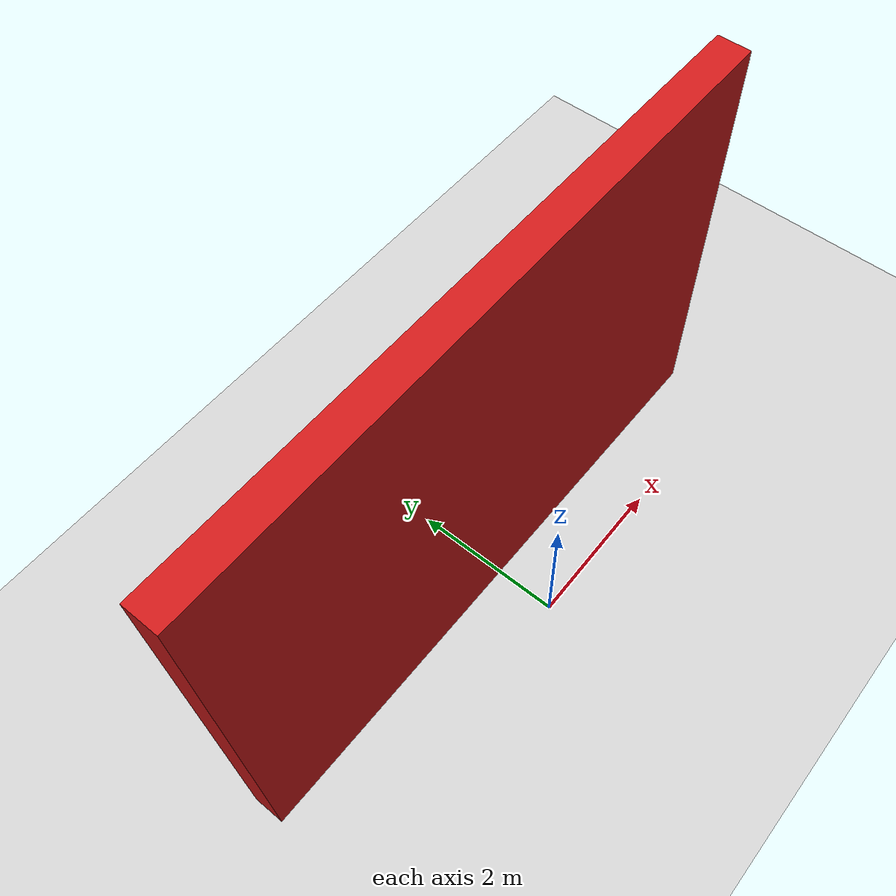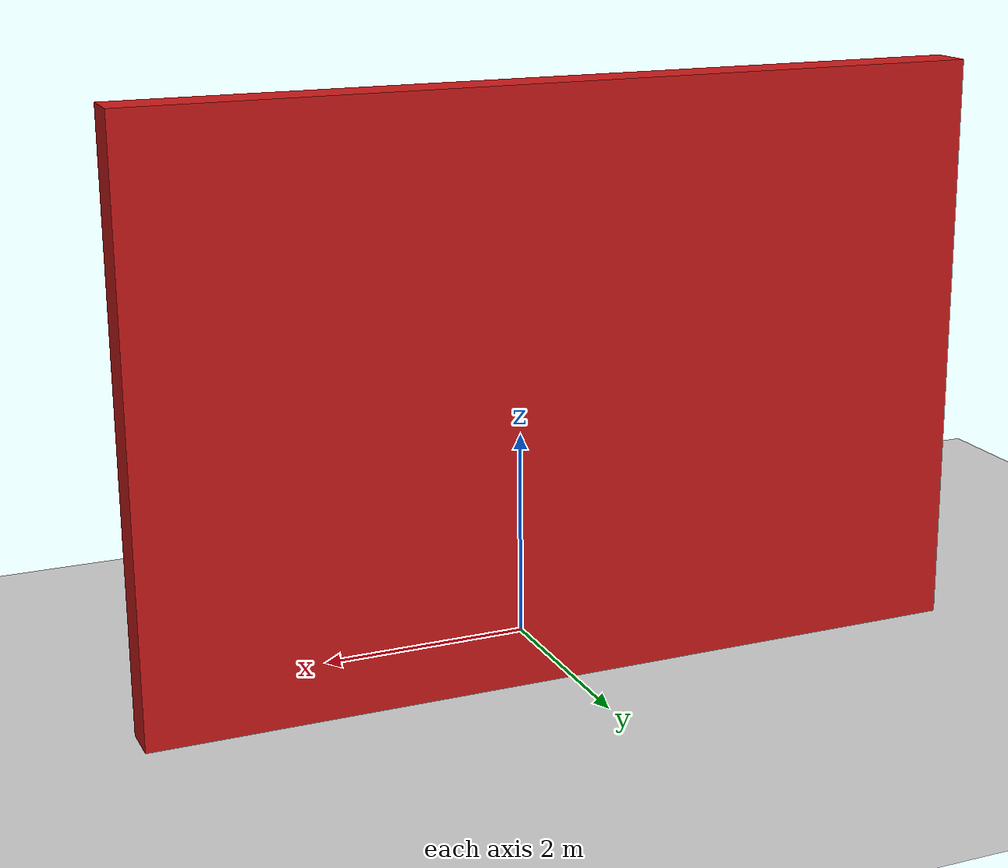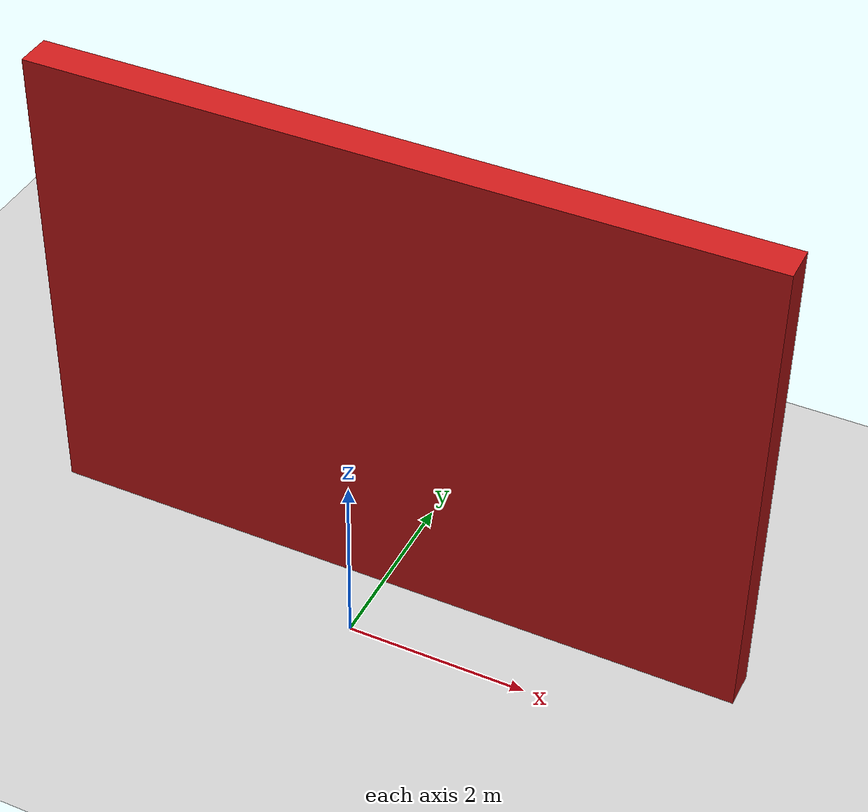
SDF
<?xml version="1.0" ?>
<sdf version="1.6">
  <world name="wallbot_world">

    <!-- Core Gazebo Harmonic system plugins -->
    <plugin filename="libignition-gazebo6-physics-system.so"           name="ignition::gazebo::systems::Physics"/>
    <plugin filename="libignition-gazebo6-sensors-system.so"           name="ignition::gazebo::systems::Sensors"/>
    <plugin filename="libignition-gazebo6-user-commands-system.so"     name="ignition::gazebo::systems::UserCommands"/>
    <plugin filename="libignition-gazebo6-scene-broadcaster-system.so" name="ignition::gazebo::systems::SceneBroadcaster"/>

    <physics type="ode">
    </physics>
    <gravity>0 0 0</gravity>

    <!-- Load default lighting & ground -->
    <include>
      <uri>
        https://fuel.gazebosim.org/1.0/OpenRobotics/models/Ground%20Plane
      </uri>
    </include>

    <include>
      <uri>
        https://fuel.gazebosim.org/1.0/OpenRobotics/models/Sun
      </uri>
    </include>

    <!-- Example: Add a static wall or obstacle -->
    <model name="wall">
      <static>true</static>
      <link name="link">
        <collision name="collision">
          <geometry>
            <box>
              <size>1 0.1 1</size>
            </box>
          </geometry>
        </collision>
        <visual name="visual">
          <geometry>
            <box>
              <size>8 0.4 6</size>
            </box>
          </geometry>
          <material>
            <ambient>0.8 0.1 0.1 1</ambient>
            <diffuse>0.8 0.1 0.1 1</diffuse>
          </material>
        </visual>
      </link>
      <pose>0 1 2.5 0 0 0</pose>
    </model>

  </world>
</sdf>
